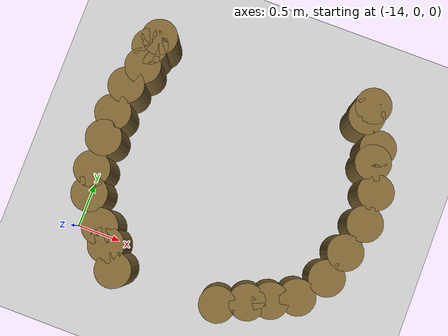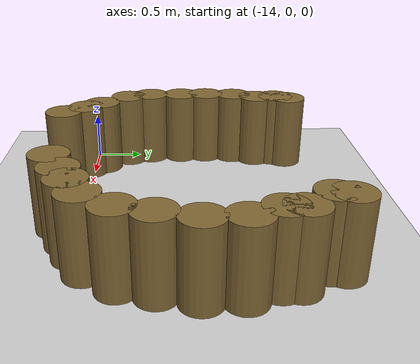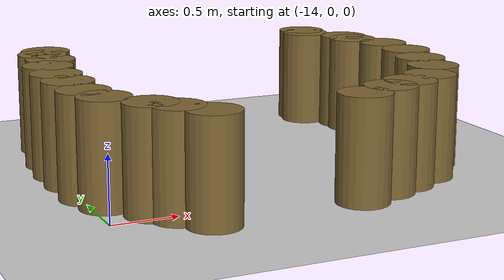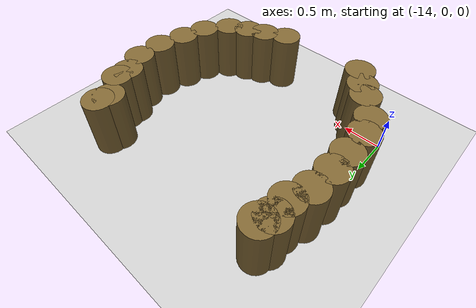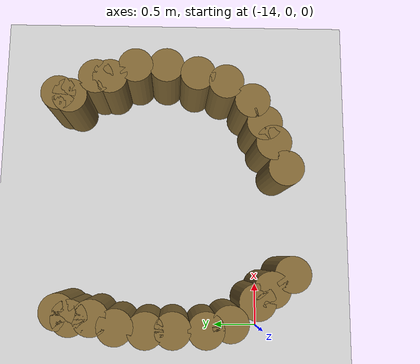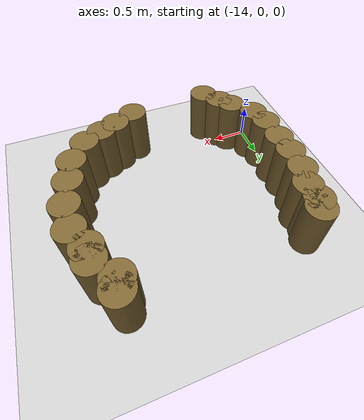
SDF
<sdf version="1.7">
 <world name="default">
  <model name="ground_plane">
   <static>1</static>
   <link name="link">
    <collision name="collision">
     <geometry><plane><normal>0 0 1</normal><size>100 100</size></plane></geometry>
     <surface><friction><ode><mu>100</mu><mu2>50</mu2></ode></friction></surface>
    </collision>
    <visual name="visual">
     <cast_shadows>0</cast_shadows>
     <geometry><plane><normal>0 0 1</normal><size>100 100</size></plane></geometry>
     <material>
      <script><uri>file://media/materials/scripts/gazebo.material</uri><name>Gazebo/Grey</name></script>
     </material>
    </visual>
   </link>
  </model>
  <model name="mini_cylinder_0_clone_0_clone_clone_clone_clone_3_clone_20_clone_7">
   <link name="link">
    <inertial>
     <mass>1</mass>
     <inertia><ixx>0.145833</ixx><ixy>0</ixy><ixz>0</ixz><iyy>0.145833</iyy><iyz>0</iyz><izz>0.125</izz></inertia>
    </inertial>
    <visual name="visual">
     <geometry><cylinder><radius>0.2</radius><length>0.8</length></cylinder></geometry>
     <material>
      <script><name>Gazebo/Grey</name><uri>file://media/materials/scripts/gazebo.material</uri></script>
      <shader type="vertex"><normal_map>__default__</normal_map></shader>
      <ambient>0.5 0.4 0.2 1</ambient>
      <diffuse>0.7 0.7 0.7 1</diffuse>
      <specular>0.01 0.01 0.01 1</specular>
      <emissive>0 0 0 1</emissive>
     </material>
    </visual>
    <collision name="collision">
     <geometry><cylinder><radius>0.2</radius><length>0.8</length></cylinder></geometry>
     <surface>
      <friction>
       <ode><mu>1</mu><mu2>1</mu2><fdir1>0 0 0</fdir1><slip1>0</slip1><slip2>0</slip2></ode>
       <torsional>
        <coefficient>1</coefficient>
        <patch_radius>0</patch_radius>
        <surface_radius>0</surface_radius>
        <use_patch_radius>1</use_patch_radius>
        <ode><slip>0</slip></ode>
       </torsional>
      </friction>
      <bounce><restitution_coefficient>0</restitution_coefficient><threshold>1e+06</threshold></bounce>
      <contact>
       <collide_without_contact>0</collide_without_contact>
       <collide_without_contact_bitmask>1</collide_without_contact_bitmask>
       <collide_bitmask>1</collide_bitmask>
       <ode>
        <soft_cfm>0</soft_cfm>
        <soft_erp>0.2</soft_erp>
        <kp>1e+13</kp>
        <kd>1</kd>
        <max_vel>0.01</max_vel>
        <min_depth>0</min_depth>
       </ode>
       <bullet>
        <split_impulse>1</split_impulse>
        <split_impulse_penetration_threshold>-0.01</split_impulse_penetration_threshold>
        <soft_cfm>0</soft_cfm>
        <soft_erp>0.2</soft_erp>
        <kp>1e+13</kp>
        <kd>1</kd>
       </bullet>
      </contact>
     </surface>
    </collision>
   </link>
   <static>1</static>
   <pose>-11.899 -0.092159 0.4 0 -0 0</pose>
  </model>
  <model name="mini_cylinder_0_clone_0_clone_clone_clone_clone_3_clone_20_clone_8">
   <link name="link">
    <inertial>
     <mass>1</mass>
     <inertia><ixx>0.145833</ixx><ixy>0</ixy><ixz>0</ixz><iyy>0.145833</iyy><iyz>0</iyz><izz>0.125</izz></inertia>
    </inertial>
    <visual name="visual">
     <geometry><cylinder><radius>0.2</radius><length>0.8</length></cylinder></geometry>
     <material>
      <script><name>Gazebo/Grey</name><uri>file://media/materials/scripts/gazebo.material</uri></script>
      <shader type="vertex"><normal_map>__default__</normal_map></shader>
      <ambient>0.5 0.4 0.2 1</ambient>
      <diffuse>0.7 0.7 0.7 1</diffuse>
      <specular>0.01 0.01 0.01 1</specular>
      <emissive>0 0 0 1</emissive>
     </material>
    </visual>
    <collision name="collision">
     <geometry><cylinder><radius>0.2</radius><length>0.8</length></cylinder></geometry>
     <surface>
      <friction>
       <ode><mu>1</mu><mu2>1</mu2><fdir1>0 0 0</fdir1><slip1>0</slip1><slip2>0</slip2></ode>
       <torsional>
        <coefficient>1</coefficient>
        <patch_radius>0</patch_radius>
        <surface_radius>0</surface_radius>
        <use_patch_radius>1</use_patch_radius>
        <ode><slip>0</slip></ode>
       </torsional>
      </friction>
      <bounce><restitution_coefficient>0</restitution_coefficient><threshold>1e+06</threshold></bounce>
      <contact>
       <collide_without_contact>0</collide_without_contact>
       <collide_without_contact_bitmask>1</collide_without_contact_bitmask>
       <collide_bitmask>1</collide_bitmask>
       <ode>
        <soft_cfm>0</soft_cfm>
        <soft_erp>0.2</soft_erp>
        <kp>1e+13</kp>
        <kd>1</kd>
        <max_vel>0.01</max_vel>
        <min_depth>0</min_depth>
       </ode>
       <bullet>
        <split_impulse>1</split_impulse>
        <split_impulse_penetration_threshold>-0.01</split_impulse_penetration_threshold>
        <soft_cfm>0</soft_cfm>
        <soft_erp>0.2</soft_erp>
        <kp>1e+13</kp>
        <kd>1</kd>
       </bullet>
      </contact>
     </surface>
    </collision>
   </link>
   <static>1</static>
   <pose>-11.6728 0.008912 0.4 0 -0 0</pose>
  </model>
  <model name="mini_cylinder_0_clone_0_clone_clone_clone_clone_3_clone_20_clone_9">
   <link name="link">
    <inertial>
     <mass>1</mass>
     <inertia><ixx>0.145833</ixx><ixy>0</ixy><ixz>0</ixz><iyy>0.145833</iyy><iyz>0</iyz><izz>0.125</izz></inertia>
    </inertial>
    <visual name="visual">
     <geometry><cylinder><radius>0.2</radius><length>0.8</length></cylinder></geometry>
     <material>
      <script><name>Gazebo/Grey</name><uri>file://media/materials/scripts/gazebo.material</uri></script>
      <shader type="vertex"><normal_map>__default__</normal_map></shader>
      <ambient>0.5 0.4 0.2 1</ambient>
      <diffuse>0.7 0.7 0.7 1</diffuse>
      <specular>0.01 0.01 0.01 1</specular>
      <emissive>0 0 0 1</emissive>
     </material>
    </visual>
    <collision name="collision">
     <geometry><cylinder><radius>0.2</radius><length>0.8</length></cylinder></geometry>
     <surface>
      <friction>
       <ode><mu>1</mu><mu2>1</mu2><fdir1>0 0 0</fdir1><slip1>0</slip1><slip2>0</slip2></ode>
       <torsional>
        <coefficient>1</coefficient>
        <patch_radius>0</patch_radius>
        <surface_radius>0</surface_radius>
        <use_patch_radius>1</use_patch_radius>
        <ode><slip>0</slip></ode>
       </torsional>
      </friction>
      <bounce><restitution_coefficient>0</restitution_coefficient><threshold>1e+06</threshold></bounce>
      <contact>
       <collide_without_contact>0</collide_without_contact>
       <collide_without_contact_bitmask>1</collide_without_contact_bitmask>
       <collide_bitmask>1</collide_bitmask>
       <ode>
        <soft_cfm>0</soft_cfm>
        <soft_erp>0.2</soft_erp>
        <kp>1e+13</kp>
        <kd>1</kd>
        <max_vel>0.01</max_vel>
        <min_depth>0</min_depth>
       </ode>
       <bullet>
        <split_impulse>1</split_impulse>
        <split_impulse_penetration_threshold>-0.01</split_impulse_penetration_threshold>
        <soft_cfm>0</soft_cfm>
        <soft_erp>0.2</soft_erp>
        <kp>1e+13</kp>
        <kd>1</kd>
       </bullet>
      </contact>
     </surface>
    </collision>
   </link>
   <static>1</static>
   <pose>-11.4147 0.142919 0.4 0 -0 0</pose>
  </model>
  <model name="mini_cylinder_0_clone_0_clone_clone_clone_clone_3_clone_20_clone_10">
   <link name="link">
    <inertial>
     <mass>1</mass>
     <inertia><ixx>0.145833</ixx><ixy>0</ixy><ixz>0</ixz><iyy>0.145833</iyy><iyz>0</iyz><izz>0.125</izz></inertia>
    </inertial>
    <visual name="visual">
     <geometry><cylinder><radius>0.2</radius><length>0.8</length></cylinder></geometry>
     <material>
      <script><name>Gazebo/Grey</name><uri>file://media/materials/scripts/gazebo.material</uri></script>
      <shader type="vertex"><normal_map>__default__</normal_map></shader>
      <ambient>0.5 0.4 0.2 1</ambient>
      <diffuse>0.7 0.7 0.7 1</diffuse>
      <specular>0.01 0.01 0.01 1</specular>
      <emissive>0 0 0 1</emissive>
     </material>
    </visual>
    <collision name="collision">
     <geometry><cylinder><radius>0.2</radius><length>0.8</length></cylinder></geometry>
     <surface>
      <friction>
       <ode><mu>1</mu><mu2>1</mu2><fdir1>0 0 0</fdir1><slip1>0</slip1><slip2>0</slip2></ode>
       <torsional>
        <coefficient>1</coefficient>
        <patch_radius>0</patch_radius>
        <surface_radius>0</surface_radius>
        <use_patch_radius>1</use_patch_radius>
        <ode><slip>0</slip></ode>
       </torsional>
      </friction>
      <bounce><restitution_coefficient>0</restitution_coefficient><threshold>1e+06</threshold></bounce>
      <contact>
       <collide_without_contact>0</collide_without_contact>
       <collide_without_contact_bitmask>1</collide_without_contact_bitmask>
       <collide_bitmask>1</collide_bitmask>
       <ode>
        <soft_cfm>0</soft_cfm>
        <soft_erp>0.2</soft_erp>
        <kp>1e+13</kp>
        <kd>1</kd>
        <max_vel>0.01</max_vel>
        <min_depth>0</min_depth>
       </ode>
       <bullet>
        <split_impulse>1</split_impulse>
        <split_impulse_penetration_threshold>-0.01</split_impulse_penetration_threshold>
        <soft_cfm>0</soft_cfm>
        <soft_erp>0.2</soft_erp>
        <kp>1e+13</kp>
        <kd>1</kd>
       </bullet>
      </contact>
     </surface>
    </collision>
   </link>
   <static>1</static>
   <pose>-11.1925 0.439163 0.4 0 -0 0</pose>
  </model>
  <model name="mini_cylinder_0_clone_0_clone_clone_clone_clone_3_clone_20_clone_11">
   <link name="link">
    <inertial>
     <mass>1</mass>
     <inertia><ixx>0.145833</ixx><ixy>0</ixy><ixz>0</ixz><iyy>0.145833</iyy><iyz>0</iyz><izz>0.125</izz></inertia>
    </inertial>
    <visual name="visual">
     <geometry><cylinder><radius>0.2</radius><length>0.8</length></cylinder></geometry>
     <material>
      <script><name>Gazebo/Grey</name><uri>file://media/materials/scripts/gazebo.material</uri></script>
      <shader type="vertex"><normal_map>__default__</normal_map></shader>
      <ambient>0.5 0.4 0.2 1</ambient>
      <diffuse>0.7 0.7 0.7 1</diffuse>
      <specular>0.01 0.01 0.01 1</specular>
      <emissive>0 0 0 1</emissive>
     </material>
    </visual>
    <collision name="collision">
     <geometry><cylinder><radius>0.2</radius><length>0.8</length></cylinder></geometry>
     <surface>
      <friction>
       <ode><mu>1</mu><mu2>1</mu2><fdir1>0 0 0</fdir1><slip1>0</slip1><slip2>0</slip2></ode>
       <torsional>
        <coefficient>1</coefficient>
        <patch_radius>0</patch_radius>
        <surface_radius>0</surface_radius>
        <use_patch_radius>1</use_patch_radius>
        <ode><slip>0</slip></ode>
       </torsional>
      </friction>
      <bounce><restitution_coefficient>0</restitution_coefficient><threshold>1e+06</threshold></bounce>
      <contact>
       <collide_without_contact>0</collide_without_contact>
       <collide_without_contact_bitmask>1</collide_without_contact_bitmask>
       <collide_bitmask>1</collide_bitmask>
       <ode>
        <soft_cfm>0</soft_cfm>
        <soft_erp>0.2</soft_erp>
        <kp>1e+13</kp>
        <kd>1</kd>
        <max_vel>0.01</max_vel>
        <min_depth>0</min_depth>
       </ode>
       <bullet>
        <split_impulse>1</split_impulse>
        <split_impulse_penetration_threshold>-0.01</split_impulse_penetration_threshold>
        <soft_cfm>0</soft_cfm>
        <soft_erp>0.2</soft_erp>
        <kp>1e+13</kp>
        <kd>1</kd>
       </bullet>
      </contact>
     </surface>
    </collision>
   </link>
   <static>1</static>
   <pose>-11.0994 0.765678 0.4 0 -0 0</pose>
  </model>
  <model name="mini_cylinder_0_clone_0_clone_clone_clone_clone_3_clone_20_clone_12">
   <link name="link">
    <inertial>
     <mass>1</mass>
     <inertia><ixx>0.145833</ixx><ixy>0</ixy><ixz>0</ixz><iyy>0.145833</iyy><iyz>0</iyz><izz>0.125</izz></inertia>
    </inertial>
    <visual name="visual">
     <geometry><cylinder><radius>0.2</radius><length>0.8</length></cylinder></geometry>
     <material>
      <script><name>Gazebo/Grey</name><uri>file://media/materials/scripts/gazebo.material</uri></script>
      <shader type="vertex"><normal_map>__default__</normal_map></shader>
      <ambient>0.5 0.4 0.2 1</ambient>
      <diffuse>0.7 0.7 0.7 1</diffuse>
      <specular>0.01 0.01 0.01 1</specular>
      <emissive>0 0 0 1</emissive>
     </material>
    </visual>
    <collision name="collision">
     <geometry><cylinder><radius>0.2</radius><length>0.8</length></cylinder></geometry>
     <surface>
      <friction>
       <ode><mu>1</mu><mu2>1</mu2><fdir1>0 0 0</fdir1><slip1>0</slip1><slip2>0</slip2></ode>
       <torsional>
        <coefficient>1</coefficient>
        <patch_radius>0</patch_radius>
        <surface_radius>0</surface_radius>
        <use_patch_radius>1</use_patch_radius>
        <ode><slip>0</slip></ode>
       </torsional>
      </friction>
      <bounce><restitution_coefficient>0</restitution_coefficient><threshold>1e+06</threshold></bounce>
      <contact>
       <collide_without_contact>0</collide_without_contact>
       <collide_without_contact_bitmask>1</collide_without_contact_bitmask>
       <collide_bitmask>1</collide_bitmask>
       <ode>
        <soft_cfm>0</soft_cfm>
        <soft_erp>0.2</soft_erp>
        <kp>1e+13</kp>
        <kd>1</kd>
        <max_vel>0.01</max_vel>
        <min_depth>0</min_depth>
       </ode>
       <bullet>
        <split_impulse>1</split_impulse>
        <split_impulse_penetration_threshold>-0.01</split_impulse_penetration_threshold>
        <soft_cfm>0</soft_cfm>
        <soft_erp>0.2</soft_erp>
        <kp>1e+13</kp>
        <kd>1</kd>
       </bullet>
      </contact>
     </surface>
    </collision>
   </link>
   <static>1</static>
   <pose>-11.0079 1.12482 0.4 0 -0 0</pose>
  </model>
  <model name="mini_cylinder_0_clone_0_clone_clone_clone_clone_3_clone_20_clone_13">
   <link name="link">
    <inertial>
     <mass>1</mass>
     <inertia><ixx>0.145833</ixx><ixy>0</ixy><ixz>0</ixz><iyy>0.145833</iyy><iyz>0</iyz><izz>0.125</izz></inertia>
    </inertial>
    <visual name="visual">
     <geometry><cylinder><radius>0.2</radius><length>0.8</length></cylinder></geometry>
     <material>
      <script><name>Gazebo/Grey</name><uri>file://media/materials/scripts/gazebo.material</uri></script>
      <shader type="vertex"><normal_map>__default__</normal_map></shader>
      <ambient>0.5 0.4 0.2 1</ambient>
      <diffuse>0.7 0.7 0.7 1</diffuse>
      <specular>0.01 0.01 0.01 1</specular>
      <emissive>0 0 0 1</emissive>
     </material>
    </visual>
    <collision name="collision">
     <geometry><cylinder><radius>0.2</radius><length>0.8</length></cylinder></geometry>
     <surface>
      <friction>
       <ode><mu>1</mu><mu2>1</mu2><fdir1>0 0 0</fdir1><slip1>0</slip1><slip2>0</slip2></ode>
       <torsional>
        <coefficient>1</coefficient>
        <patch_radius>0</patch_radius>
        <surface_radius>0</surface_radius>
        <use_patch_radius>1</use_patch_radius>
        <ode><slip>0</slip></ode>
       </torsional>
      </friction>
      <bounce><restitution_coefficient>0</restitution_coefficient><threshold>1e+06</threshold></bounce>
      <contact>
       <collide_without_contact>0</collide_without_contact>
       <collide_without_contact_bitmask>1</collide_without_contact_bitmask>
       <collide_bitmask>1</collide_bitmask>
       <ode>
        <soft_cfm>0</soft_cfm>
        <soft_erp>0.2</soft_erp>
        <kp>1e+13</kp>
        <kd>1</kd>
        <max_vel>0.01</max_vel>
        <min_depth>0</min_depth>
       </ode>
       <bullet>
        <split_impulse>1</split_impulse>
        <split_impulse_penetration_threshold>-0.01</split_impulse_penetration_threshold>
        <soft_cfm>0</soft_cfm>
        <soft_erp>0.2</soft_erp>
        <kp>1e+13</kp>
        <kd>1</kd>
       </bullet>
      </contact>
     </surface>
    </collision>
   </link>
   <static>1</static>
   <pose>-11.0137 1.48252 0.4 0 -0 0</pose>
  </model>
  <model name="mini_cylinder_0_clone_0_clone_clone_clone_clone_3_clone_20_clone_14">
   <link name="link">
    <inertial>
     <mass>1</mass>
     <inertia><ixx>0.145833</ixx><ixy>0</ixy><ixz>0</ixz><iyy>0.145833</iyy><iyz>0</iyz><izz>0.125</izz></inertia>
    </inertial>
    <visual name="visual">
     <geometry><cylinder><radius>0.2</radius><length>0.8</length></cylinder></geometry>
     <material>
      <script><name>Gazebo/Grey</name><uri>file://media/materials/scripts/gazebo.material</uri></script>
      <shader type="vertex"><normal_map>__default__</normal_map></shader>
      <ambient>0.5 0.4 0.2 1</ambient>
      <diffuse>0.7 0.7 0.7 1</diffuse>
      <specular>0.01 0.01 0.01 1</specular>
      <emissive>0 0 0 1</emissive>
     </material>
    </visual>
    <collision name="collision">
     <geometry><cylinder><radius>0.2</radius><length>0.8</length></cylinder></geometry>
     <surface>
      <friction>
       <ode><mu>1</mu><mu2>1</mu2><fdir1>0 0 0</fdir1><slip1>0</slip1><slip2>0</slip2></ode>
       <torsional>
        <coefficient>1</coefficient>
        <patch_radius>0</patch_radius>
        <surface_radius>0</surface_radius>
        <use_patch_radius>1</use_patch_radius>
        <ode><slip>0</slip></ode>
       </torsional>
      </friction>
      <bounce><restitution_coefficient>0</restitution_coefficient><threshold>1e+06</threshold></bounce>
      <contact>
       <collide_without_contact>0</collide_without_contact>
       <collide_without_contact_bitmask>1</collide_without_contact_bitmask>
       <collide_bitmask>1</collide_bitmask>
       <ode>
        <soft_cfm>0</soft_cfm>
        <soft_erp>0.2</soft_erp>
        <kp>1e+13</kp>
        <kd>1</kd>
        <max_vel>0.01</max_vel>
        <min_depth>0</min_depth>
       </ode>
       <bullet>
        <split_impulse>1</split_impulse>
        <split_impulse_penetration_threshold>-0.01</split_impulse_penetration_threshold>
        <soft_cfm>0</soft_cfm>
        <soft_erp>0.2</soft_erp>
        <kp>1e+13</kp>
        <kd>1</kd>
       </bullet>
      </contact>
     </surface>
    </collision>
   </link>
   <static>1</static>
   <pose>-11.1516 1.93585 0.4 0 -0 0</pose>
  </model>
  <model name="mini_cylinder_0_clone_0_clone_clone_clone_clone_3_clone_20_clone_15">
   <link name="link">
    <inertial>
     <mass>1</mass>
     <inertia><ixx>0.145833</ixx><ixy>0</ixy><ixz>0</ixz><iyy>0.145833</iyy><iyz>0</iyz><izz>0.125</izz></inertia>
    </inertial>
    <visual name="visual">
     <geometry><cylinder><radius>0.2</radius><length>0.8</length></cylinder></geometry>
     <material>
      <script><name>Gazebo/Grey</name><uri>file://media/materials/scripts/gazebo.material</uri></script>
      <shader type="vertex"><normal_map>__default__</normal_map></shader>
      <ambient>0.5 0.4 0.2 1</ambient>
      <diffuse>0.7 0.7 0.7 1</diffuse>
      <specular>0.01 0.01 0.01 1</specular>
      <emissive>0 0 0 1</emissive>
     </material>
    </visual>
    <collision name="collision">
     <geometry><cylinder><radius>0.2</radius><length>0.8</length></cylinder></geometry>
     <surface>
      <friction>
       <ode><mu>1</mu><mu2>1</mu2><fdir1>0 0 0</fdir1><slip1>0</slip1><slip2>0</slip2></ode>
       <torsional>
        <coefficient>1</coefficient>
        <patch_radius>0</patch_radius>
        <surface_radius>0</surface_radius>
        <use_patch_radius>1</use_patch_radius>
        <ode><slip>0</slip></ode>
       </torsional>
      </friction>
      <bounce><restitution_coefficient>0</restitution_coefficient><threshold>1e+06</threshold></bounce>
      <contact>
       <collide_without_contact>0</collide_without_contact>
       <collide_without_contact_bitmask>1</collide_without_contact_bitmask>
       <collide_bitmask>1</collide_bitmask>
       <ode>
        <soft_cfm>0</soft_cfm>
        <soft_erp>0.2</soft_erp>
        <kp>1e+13</kp>
        <kd>1</kd>
        <max_vel>0.01</max_vel>
        <min_depth>0</min_depth>
       </ode>
       <bullet>
        <split_impulse>1</split_impulse>
        <split_impulse_penetration_threshold>-0.01</split_impulse_penetration_threshold>
        <soft_cfm>0</soft_cfm>
        <soft_erp>0.2</soft_erp>
        <kp>1e+13</kp>
        <kd>1</kd>
       </bullet>
      </contact>
     </surface>
    </collision>
   </link>
   <static>1</static>
   <pose>-11.353 2.35543 0.4 0 -0 0</pose>
  </model>
  <model name="mini_cylinder_0_clone_0_clone_clone_clone_clone_3_clone_20_clone_16">
   <link name="link">
    <inertial>
     <mass>1</mass>
     <inertia><ixx>0.145833</ixx><ixy>0</ixy><ixz>0</ixz><iyy>0.145833</iyy><iyz>0</iyz><izz>0.125</izz></inertia>
    </inertial>
    <visual name="visual">
     <geometry><cylinder><radius>0.2</radius><length>0.8</length></cylinder></geometry>
     <material>
      <script><name>Gazebo/Grey</name><uri>file://media/materials/scripts/gazebo.material</uri></script>
      <shader type="vertex"><normal_map>__default__</normal_map></shader>
      <ambient>0.5 0.4 0.2 1</ambient>
      <diffuse>0.7 0.7 0.7 1</diffuse>
      <specular>0.01 0.01 0.01 1</specular>
      <emissive>0 0 0 1</emissive>
     </material>
    </visual>
    <collision name="collision">
     <geometry><cylinder><radius>0.2</radius><length>0.8</length></cylinder></geometry>
     <surface>
      <friction>
       <ode><mu>1</mu><mu2>1</mu2><fdir1>0 0 0</fdir1><slip1>0</slip1><slip2>0</slip2></ode>
       <torsional>
        <coefficient>1</coefficient>
        <patch_radius>0</patch_radius>
        <surface_radius>0</surface_radius>
        <use_patch_radius>1</use_patch_radius>
        <ode><slip>0</slip></ode>
       </torsional>
      </friction>
      <bounce><restitution_coefficient>0</restitution_coefficient><threshold>1e+06</threshold></bounce>
      <contact>
       <collide_without_contact>0</collide_without_contact>
       <collide_without_contact_bitmask>1</collide_without_contact_bitmask>
       <collide_bitmask>1</collide_bitmask>
       <ode>
        <soft_cfm>0</soft_cfm>
        <soft_erp>0.2</soft_erp>
        <kp>1e+13</kp>
        <kd>1</kd>
        <max_vel>0.01</max_vel>
        <min_depth>0</min_depth>
       </ode>
       <bullet>
        <split_impulse>1</split_impulse>
        <split_impulse_penetration_threshold>-0.01</split_impulse_penetration_threshold>
        <soft_cfm>0</soft_cfm>
        <soft_erp>0.2</soft_erp>
        <kp>1e+13</kp>
        <kd>1</kd>
       </bullet>
      </contact>
     </surface>
    </collision>
   </link>
   <static>1</static>
   <pose>-11.1486 1.77327 0.4 0 -0 0</pose>
  </model>
  <model name="mini_cylinder_0_clone_0_clone_clone_clone_clone_3_clone_20_clone_17">
   <link name="link">
    <inertial>
     <mass>1</mass>
     <inertia><ixx>0.145833</ixx><ixy>0</ixy><ixz>0</ixz><iyy>0.145833</iyy><iyz>0</iyz><izz>0.125</izz></inertia>
    </inertial>
    <visual name="visual">
     <geometry><cylinder><radius>0.2</radius><length>0.8</length></cylinder></geometry>
     <material>
      <script><name>Gazebo/Grey</name><uri>file://media/materials/scripts/gazebo.material</uri></script>
      <shader type="vertex"><normal_map>__default__</normal_map></shader>
      <ambient>0.5 0.4 0.2 1</ambient>
      <diffuse>0.7 0.7 0.7 1</diffuse>
      <specular>0.01 0.01 0.01 1</specular>
      <emissive>0 0 0 1</emissive>
     </material>
    </visual>
    <collision name="collision">
     <geometry><cylinder><radius>0.2</radius><length>0.8</length></cylinder></geometry>
     <surface>
      <friction>
       <ode><mu>1</mu><mu2>1</mu2><fdir1>0 0 0</fdir1><slip1>0</slip1><slip2>0</slip2></ode>
       <torsional>
        <coefficient>1</coefficient>
        <patch_radius>0</patch_radius>
        <surface_radius>0</surface_radius>
        <use_patch_radius>1</use_patch_radius>
        <ode><slip>0</slip></ode>
       </torsional>
      </friction>
      <bounce><restitution_coefficient>0</restitution_coefficient><threshold>1e+06</threshold></bounce>
      <contact>
       <collide_without_contact>0</collide_without_contact>
       <collide_without_contact_bitmask>1</collide_without_contact_bitmask>
       <collide_bitmask>1</collide_bitmask>
       <ode>
        <soft_cfm>0</soft_cfm>
        <soft_erp>0.2</soft_erp>
        <kp>1e+13</kp>
        <kd>1</kd>
        <max_vel>0.01</max_vel>
        <min_depth>0</min_depth>
       </ode>
       <bullet>
        <split_impulse>1</split_impulse>
        <split_impulse_penetration_threshold>-0.01</split_impulse_penetration_threshold>
        <soft_cfm>0</soft_cfm>
        <soft_erp>0.2</soft_erp>
        <kp>1e+13</kp>
        <kd>1</kd>
       </bullet>
      </contact>
     </surface>
    </collision>
   </link>
   <static>1</static>
   <pose>-11.3832 2.22483 0.4 0 -0 0</pose>
  </model>
  <model name="mini_cylinder_0_clone_0_clone_clone_clone_clone_3_clone_20_clone_26">
   <link name="link">
    <inertial>
     <mass>1</mass>
     <inertia><ixx>0.145833</ixx><ixy>0</ixy><ixz>0</ixz><iyy>0.145833</iyy><iyz>0</iyz><izz>0.125</izz></inertia>
    </inertial>
    <visual name="visual">
     <geometry><cylinder><radius>0.2</radius><length>0.8</length></cylinder></geometry>
     <material>
      <script><name>Gazebo/Grey</name><uri>file://media/materials/scripts/gazebo.material</uri></script>
      <shader type="vertex"><normal_map>__default__</normal_map></shader>
      <ambient>0.5 0.4 0.2 1</ambient>
      <diffuse>0.7 0.7 0.7 1</diffuse>
      <specular>0.01 0.01 0.01 1</specular>
      <emissive>0 0 0 1</emissive>
     </material>
    </visual>
    <collision name="collision">
     <geometry><cylinder><radius>0.2</radius><length>0.8</length></cylinder></geometry>
     <surface>
      <friction>
       <ode><mu>1</mu><mu2>1</mu2><fdir1>0 0 0</fdir1><slip1>0</slip1><slip2>0</slip2></ode>
       <torsional>
        <coefficient>1</coefficient>
        <patch_radius>0</patch_radius>
        <surface_radius>0</surface_radius>
        <use_patch_radius>1</use_patch_radius>
        <ode><slip>0</slip></ode>
       </torsional>
      </friction>
      <bounce><restitution_coefficient>0</restitution_coefficient><threshold>1e+06</threshold></bounce>
      <contact>
       <collide_without_contact>0</collide_without_contact>
       <collide_without_contact_bitmask>1</collide_without_contact_bitmask>
       <collide_bitmask>1</collide_bitmask>
       <ode>
        <soft_cfm>0</soft_cfm>
        <soft_erp>0.2</soft_erp>
        <kp>1e+13</kp>
        <kd>1</kd>
        <max_vel>0.01</max_vel>
        <min_depth>0</min_depth>
       </ode>
       <bullet>
        <split_impulse>1</split_impulse>
        <split_impulse_penetration_threshold>-0.01</split_impulse_penetration_threshold>
        <soft_cfm>0</soft_cfm>
        <soft_erp>0.2</soft_erp>
        <kp>1e+13</kp>
        <kd>1</kd>
       </bullet>
      </contact>
     </surface>
    </collision>
   </link>
   <static>1</static>
   <pose>-13.7894 2.25201 0.4 0 -0 0</pose>
  </model>
  <model name="mini_cylinder_0_clone_0_clone_clone_clone_clone_3_clone_20_clone_27">
   <link name="link">
    <inertial>
     <mass>1</mass>
     <inertia><ixx>0.145833</ixx><ixy>0</ixy><ixz>0</ixz><iyy>0.145833</iyy><iyz>0</iyz><izz>0.125</izz></inertia>
    </inertial>
    <visual name="visual">
     <geometry><cylinder><radius>0.2</radius><length>0.8</length></cylinder></geometry>
     <material>
      <script><name>Gazebo/Grey</name><uri>file://media/materials/scripts/gazebo.material</uri></script>
      <shader type="vertex"><normal_map>__default__</normal_map></shader>
      <ambient>0.5 0.4 0.2 1</ambient>
      <diffuse>0.7 0.7 0.7 1</diffuse>
      <specular>0.01 0.01 0.01 1</specular>
      <emissive>0 0 0 1</emissive>
     </material>
    </visual>
    <collision name="collision">
     <geometry><cylinder><radius>0.2</radius><length>0.8</length></cylinder></geometry>
     <surface>
      <friction>
       <ode><mu>1</mu><mu2>1</mu2><fdir1>0 0 0</fdir1><slip1>0</slip1><slip2>0</slip2></ode>
       <torsional>
        <coefficient>1</coefficient>
        <patch_radius>0</patch_radius>
        <surface_radius>0</surface_radius>
        <use_patch_radius>1</use_patch_radius>
        <ode><slip>0</slip></ode>
       </torsional>
      </friction>
      <bounce><restitution_coefficient>0</restitution_coefficient><threshold>1e+06</threshold></bounce>
      <contact>
       <collide_without_contact>0</collide_without_contact>
       <collide_without_contact_bitmask>1</collide_without_contact_bitmask>
       <collide_bitmask>1</collide_bitmask>
       <ode>
        <soft_cfm>0</soft_cfm>
        <soft_erp>0.2</soft_erp>
        <kp>1e+13</kp>
        <kd>1</kd>
        <max_vel>0.01</max_vel>
        <min_depth>0</min_depth>
       </ode>
       <bullet>
        <split_impulse>1</split_impulse>
        <split_impulse_penetration_threshold>-0.01</split_impulse_penetration_threshold>
        <soft_cfm>0</soft_cfm>
        <soft_erp>0.2</soft_erp>
        <kp>1e+13</kp>
        <kd>1</kd>
       </bullet>
      </contact>
     </surface>
    </collision>
   </link>
   <static>1</static>
   <pose>-13.8483 1.89327 0.4 0 -0 0</pose>
  </model>
  <model name="mini_cylinder_0_clone_0_clone_clone_clone_clone_3_clone_20_clone_28">
   <link name="link">
    <inertial>
     <mass>1</mass>
     <inertia><ixx>0.145833</ixx><ixy>0</ixy><ixz>0</ixz><iyy>0.145833</iyy><iyz>0</iyz><izz>0.125</izz></inertia>
    </inertial>
    <visual name="visual">
     <geometry><cylinder><radius>0.2</radius><length>0.8</length></cylinder></geometry>
     <material>
      <script><name>Gazebo/Grey</name><uri>file://media/materials/scripts/gazebo.material</uri></script>
      <shader type="vertex"><normal_map>__default__</normal_map></shader>
      <ambient>0.5 0.4 0.2 1</ambient>
      <diffuse>0.7 0.7 0.7 1</diffuse>
      <specular>0.01 0.01 0.01 1</specular>
      <emissive>0 0 0 1</emissive>
     </material>
    </visual>
    <collision name="collision">
     <geometry><cylinder><radius>0.2</radius><length>0.8</length></cylinder></geometry>
     <surface>
      <friction>
       <ode><mu>1</mu><mu2>1</mu2><fdir1>0 0 0</fdir1><slip1>0</slip1><slip2>0</slip2></ode>
       <torsional>
        <coefficient>1</coefficient>
        <patch_radius>0</patch_radius>
        <surface_radius>0</surface_radius>
        <use_patch_radius>1</use_patch_radius>
        <ode><slip>0</slip></ode>
       </torsional>
      </friction>
      <bounce><restitution_coefficient>0</restitution_coefficient><threshold>1e+06</threshold></bounce>
      <contact>
       <collide_without_contact>0</collide_without_contact>
       <collide_without_contact_bitmask>1</collide_without_contact_bitmask>
       <collide_bitmask>1</collide_bitmask>
       <ode>
        <soft_cfm>0</soft_cfm>
        <soft_erp>0.2</soft_erp>
        <kp>1e+13</kp>
        <kd>1</kd>
        <max_vel>0.01</max_vel>
        <min_depth>0</min_depth>
       </ode>
       <bullet>
        <split_impulse>1</split_impulse>
        <split_impulse_penetration_threshold>-0.01</split_impulse_penetration_threshold>
        <soft_cfm>0</soft_cfm>
        <soft_erp>0.2</soft_erp>
        <kp>1e+13</kp>
        <kd>1</kd>
       </bullet>
      </contact>
     </surface>
    </collision>
   </link>
   <static>1</static>
   <pose>-13.9409 1.63155 0.4 0 -0 0</pose>
  </model>
  <model name="mini_cylinder_0_clone_0_clone_clone_clone_clone_3_clone_20_clone_29">
   <link name="link">
    <inertial>
     <mass>1</mass>
     <inertia><ixx>0.145833</ixx><ixy>0</ixy><ixz>0</ixz><iyy>0.145833</iyy><iyz>0</iyz><izz>0.125</izz></inertia>
    </inertial>
    <visual name="visual">
     <geometry><cylinder><radius>0.2</radius><length>0.8</length></cylinder></geometry>
     <material>
      <script><name>Gazebo/Grey</name><uri>file://media/materials/scripts/gazebo.material</uri></script>
      <shader type="vertex"><normal_map>__default__</normal_map></shader>
      <ambient>0.5 0.4 0.2 1</ambient>
      <diffuse>0.7 0.7 0.7 1</diffuse>
      <specular>0.01 0.01 0.01 1</specular>
      <emissive>0 0 0 1</emissive>
     </material>
    </visual>
    <collision name="collision">
     <geometry><cylinder><radius>0.2</radius><length>0.8</length></cylinder></geometry>
     <surface>
      <friction>
       <ode><mu>1</mu><mu2>1</mu2><fdir1>0 0 0</fdir1><slip1>0</slip1><slip2>0</slip2></ode>
       <torsional>
        <coefficient>1</coefficient>
        <patch_radius>0</patch_radius>
        <surface_radius>0</surface_radius>
        <use_patch_radius>1</use_patch_radius>
        <ode><slip>0</slip></ode>
       </torsional>
      </friction>
      <bounce><restitution_coefficient>0</restitution_coefficient><threshold>1e+06</threshold></bounce>
      <contact>
       <collide_without_contact>0</collide_without_contact>
       <collide_without_contact_bitmask>1</collide_without_contact_bitmask>
       <collide_bitmask>1</collide_bitmask>
       <ode>
        <soft_cfm>0</soft_cfm>
        <soft_erp>0.2</soft_erp>
        <kp>1e+13</kp>
        <kd>1</kd>
        <max_vel>0.01</max_vel>
        <min_depth>0</min_depth>
       </ode>
       <bullet>
        <split_impulse>1</split_impulse>
        <split_impulse_penetration_threshold>-0.01</split_impulse_penetration_threshold>
        <soft_cfm>0</soft_cfm>
        <soft_erp>0.2</soft_erp>
        <kp>1e+13</kp>
        <kd>1</kd>
       </bullet>
      </contact>
     </surface>
    </collision>
   </link>
   <static>1</static>
   <pose>-13.9687 1.3061 0.4 0 -0 0</pose>
  </model>
  <model name="mini_cylinder_0_clone_0_clone_clone_clone_clone_3_clone_20_clone_30">
   <link name="link">
    <inertial>
     <mass>1</mass>
     <inertia><ixx>0.145833</ixx><ixy>0</ixy><ixz>0</ixz><iyy>0.145833</iyy><iyz>0</iyz><izz>0.125</izz></inertia>
    </inertial>
    <visual name="visual">
     <geometry><cylinder><radius>0.2</radius><length>0.8</length></cylinder></geometry>
     <material>
      <script><name>Gazebo/Grey</name><uri>file://media/materials/scripts/gazebo.material</uri></script>
      <shader type="vertex"><normal_map>__default__</normal_map></shader>
      <ambient>0.5 0.4 0.2 1</ambient>
      <diffuse>0.7 0.7 0.7 1</diffuse>
      <specular>0.01 0.01 0.01 1</specular>
      <emissive>0 0 0 1</emissive>
     </material>
    </visual>
    <collision name="collision">
     <geometry><cylinder><radius>0.2</radius><length>0.8</length></cylinder></geometry>
     <surface>
      <friction>
       <ode><mu>1</mu><mu2>1</mu2><fdir1>0 0 0</fdir1><slip1>0</slip1><slip2>0</slip2></ode>
       <torsional>
        <coefficient>1</coefficient>
        <patch_radius>0</patch_radius>
        <surface_radius>0</surface_radius>
        <use_patch_radius>1</use_patch_radius>
        <ode><slip>0</slip></ode>
       </torsional>
      </friction>
      <bounce><restitution_coefficient>0</restitution_coefficient><threshold>1e+06</threshold></bounce>
      <contact>
       <collide_without_contact>0</collide_without_contact>
       <collide_without_contact_bitmask>1</collide_without_contact_bitmask>
       <collide_bitmask>1</collide_bitmask>
       <ode>
        <soft_cfm>0</soft_cfm>
        <soft_erp>0.2</soft_erp>
        <kp>1e+13</kp>
        <kd>1</kd>
        <max_vel>0.01</max_vel>
        <min_depth>0</min_depth>
       </ode>
       <bullet>
        <split_impulse>1</split_impulse>
        <split_impulse_penetration_threshold>-0.01</split_impulse_penetration_threshold>
        <soft_cfm>0</soft_cfm>
        <soft_erp>0.2</soft_erp>
        <kp>1e+13</kp>
        <kd>1</kd>
       </bullet>
      </contact>
     </surface>
    </collision>
   </link>
   <static>1</static>
   <pose>-13.964 1.01349 0.4 0 -0 0</pose>
  </model>
  <model name="mini_cylinder_0_clone_0_clone_clone_clone_clone_3_clone_20_clone_31">
   <link name="link">
    <inertial>
     <mass>1</mass>
     <inertia><ixx>0.145833</ixx><ixy>0</ixy><ixz>0</ixz><iyy>0.145833</iyy><iyz>0</iyz><izz>0.125</izz></inertia>
    </inertial>
    <visual name="visual">
     <geometry><cylinder><radius>0.2</radius><length>0.8</length></cylinder></geometry>
     <material>
      <script><name>Gazebo/Grey</name><uri>file://media/materials/scripts/gazebo.material</uri></script>
      <shader type="vertex"><normal_map>__default__</normal_map></shader>
      <ambient>0.5 0.4 0.2 1</ambient>
      <diffuse>0.7 0.7 0.7 1</diffuse>
      <specular>0.01 0.01 0.01 1</specular>
      <emissive>0 0 0 1</emissive>
     </material>
    </visual>
    <collision name="collision">
     <geometry><cylinder><radius>0.2</radius><length>0.8</length></cylinder></geometry>
     <surface>
      <friction>
       <ode><mu>1</mu><mu2>1</mu2><fdir1>0 0 0</fdir1><slip1>0</slip1><slip2>0</slip2></ode>
       <torsional>
        <coefficient>1</coefficient>
        <patch_radius>0</patch_radius>
        <surface_radius>0</surface_radius>
        <use_patch_radius>1</use_patch_radius>
        <ode><slip>0</slip></ode>
       </torsional>
      </friction>
      <bounce><restitution_coefficient>0</restitution_coefficient><threshold>1e+06</threshold></bounce>
      <contact>
       <collide_without_contact>0</collide_without_contact>
       <collide_without_contact_bitmask>1</collide_without_contact_bitmask>
       <collide_bitmask>1</collide_bitmask>
       <ode>
        <soft_cfm>0</soft_cfm>
        <soft_erp>0.2</soft_erp>
        <kp>1e+13</kp>
        <kd>1</kd>
        <max_vel>0.01</max_vel>
        <min_depth>0</min_depth>
       </ode>
       <bullet>
        <split_impulse>1</split_impulse>
        <split_impulse_penetration_threshold>-0.01</split_impulse_penetration_threshold>
        <soft_cfm>0</soft_cfm>
        <soft_erp>0.2</soft_erp>
        <kp>1e+13</kp>
        <kd>1</kd>
       </bullet>
      </contact>
     </surface>
    </collision>
   </link>
   <static>1</static>
   <pose>-13.9581 0.655887 0.4 0 -0 0</pose>
  </model>
  <model name="mini_cylinder_0_clone_0_clone_clone_clone_clone_3_clone_20_clone_32">
   <link name="link">
    <inertial>
     <mass>1</mass>
     <inertia><ixx>0.145833</ixx><ixy>0</ixy><ixz>0</ixz><iyy>0.145833</iyy><iyz>0</iyz><izz>0.125</izz></inertia>
    </inertial>
    <visual name="visual">
     <geometry><cylinder><radius>0.2</radius><length>0.8</length></cylinder></geometry>
     <material>
      <script><name>Gazebo/Grey</name><uri>file://media/materials/scripts/gazebo.material</uri></script>
      <shader type="vertex"><normal_map>__default__</normal_map></shader>
      <ambient>0.5 0.4 0.2 1</ambient>
      <diffuse>0.7 0.7 0.7 1</diffuse>
      <specular>0.01 0.01 0.01 1</specular>
      <emissive>0 0 0 1</emissive>
     </material>
    </visual>
    <collision name="collision">
     <geometry><cylinder><radius>0.2</radius><length>0.8</length></cylinder></geometry>
     <surface>
      <friction>
       <ode><mu>1</mu><mu2>1</mu2><fdir1>0 0 0</fdir1><slip1>0</slip1><slip2>0</slip2></ode>
       <torsional>
        <coefficient>1</coefficient>
        <patch_radius>0</patch_radius>
        <surface_radius>0</surface_radius>
        <use_patch_radius>1</use_patch_radius>
        <ode><slip>0</slip></ode>
       </torsional>
      </friction>
      <bounce><restitution_coefficient>0</restitution_coefficient><threshold>1e+06</threshold></bounce>
      <contact>
       <collide_without_contact>0</collide_without_contact>
       <collide_without_contact_bitmask>1</collide_without_contact_bitmask>
       <collide_bitmask>1</collide_bitmask>
       <ode>
        <soft_cfm>0</soft_cfm>
        <soft_erp>0.2</soft_erp>
        <kp>1e+13</kp>
        <kd>1</kd>
        <max_vel>0.01</max_vel>
        <min_depth>0</min_depth>
       </ode>
       <bullet>
        <split_impulse>1</split_impulse>
        <split_impulse_penetration_threshold>-0.01</split_impulse_penetration_threshold>
        <soft_cfm>0</soft_cfm>
        <soft_erp>0.2</soft_erp>
        <kp>1e+13</kp>
        <kd>1</kd>
       </bullet>
      </contact>
     </surface>
    </collision>
   </link>
   <static>1</static>
   <pose>-13.8886 0.396803 0.4 0 -0 0</pose>
  </model>
  <model name="mini_cylinder_0_clone_0_clone_clone_clone_clone_3_clone_20_clone_33">
   <link name="link">
    <inertial>
     <mass>1</mass>
     <inertia><ixx>0.145833</ixx><ixy>0</ixy><ixz>0</ixz><iyy>0.145833</iyy><iyz>0</iyz><izz>0.125</izz></inertia>
    </inertial>
    <visual name="visual">
     <geometry><cylinder><radius>0.2</radius><length>0.8</length></cylinder></geometry>
     <material>
      <script><name>Gazebo/Grey</name><uri>file://media/materials/scripts/gazebo.material</uri></script>
      <shader type="vertex"><normal_map>__default__</normal_map></shader>
      <ambient>0.5 0.4 0.2 1</ambient>
      <diffuse>0.7 0.7 0.7 1</diffuse>
      <specular>0.01 0.01 0.01 1</specular>
      <emissive>0 0 0 1</emissive>
     </material>
    </visual>
    <collision name="collision">
     <geometry><cylinder><radius>0.2</radius><length>0.8</length></cylinder></geometry>
     <surface>
      <friction>
       <ode><mu>1</mu><mu2>1</mu2><fdir1>0 0 0</fdir1><slip1>0</slip1><slip2>0</slip2></ode>
       <torsional>
        <coefficient>1</coefficient>
        <patch_radius>0</patch_radius>
        <surface_radius>0</surface_radius>
        <use_patch_radius>1</use_patch_radius>
        <ode><slip>0</slip></ode>
       </torsional>
      </friction>
      <bounce><restitution_coefficient>0</restitution_coefficient><threshold>1e+06</threshold></bounce>
      <contact>
       <collide_without_contact>0</collide_without_contact>
       <collide_without_contact_bitmask>1</collide_without_contact_bitmask>
       <collide_bitmask>1</collide_bitmask>
       <ode>
        <soft_cfm>0</soft_cfm>
        <soft_erp>0.2</soft_erp>
        <kp>1e+13</kp>
        <kd>1</kd>
        <max_vel>0.01</max_vel>
        <min_depth>0</min_depth>
       </ode>
       <bullet>
        <split_impulse>1</split_impulse>
        <split_impulse_penetration_threshold>-0.01</split_impulse_penetration_threshold>
        <soft_cfm>0</soft_cfm>
        <soft_erp>0.2</soft_erp>
        <kp>1e+13</kp>
        <kd>1</kd>
       </bullet>
      </contact>
     </surface>
    </collision>
   </link>
   <static>1</static>
   <pose>-13.6562 0.107864 0.4 0 -0 0</pose>
  </model>
  <model name="mini_cylinder_0_clone_0_clone_clone_clone_clone_3_clone_20_clone_34">
   <link name="link">
    <inertial>
     <mass>1</mass>
     <inertia><ixx>0.145833</ixx><ixy>0</ixy><ixz>0</ixz><iyy>0.145833</iyy><iyz>0</iyz><izz>0.125</izz></inertia>
    </inertial>
    <visual name="visual">
     <geometry><cylinder><radius>0.2</radius><length>0.8</length></cylinder></geometry>
     <material>
      <script><name>Gazebo/Grey</name><uri>file://media/materials/scripts/gazebo.material</uri></script>
      <shader type="vertex"><normal_map>__default__</normal_map></shader>
      <ambient>0.5 0.4 0.2 1</ambient>
      <diffuse>0.7 0.7 0.7 1</diffuse>
      <specular>0.01 0.01 0.01 1</specular>
      <emissive>0 0 0 1</emissive>
     </material>
    </visual>
    <collision name="collision">
     <geometry><cylinder><radius>0.2</radius><length>0.8</length></cylinder></geometry>
     <surface>
      <friction>
       <ode><mu>1</mu><mu2>1</mu2><fdir1>0 0 0</fdir1><slip1>0</slip1><slip2>0</slip2></ode>
       <torsional>
        <coefficient>1</coefficient>
        <patch_radius>0</patch_radius>
        <surface_radius>0</surface_radius>
        <use_patch_radius>1</use_patch_radius>
        <ode><slip>0</slip></ode>
       </torsional>
      </friction>
      <bounce><restitution_coefficient>0</restitution_coefficient><threshold>1e+06</threshold></bounce>
      <contact>
       <collide_without_contact>0</collide_without_contact>
       <collide_without_contact_bitmask>1</collide_without_contact_bitmask>
       <collide_bitmask>1</collide_bitmask>
       <ode>
        <soft_cfm>0</soft_cfm>
        <soft_erp>0.2</soft_erp>
        <kp>1e+13</kp>
        <kd>1</kd>
        <max_vel>0.01</max_vel>
        <min_depth>0</min_depth>
       </ode>
       <bullet>
        <split_impulse>1</split_impulse>
        <split_impulse_penetration_threshold>-0.01</split_impulse_penetration_threshold>
        <soft_cfm>0</soft_cfm>
        <soft_erp>0.2</soft_erp>
        <kp>1e+13</kp>
        <kd>1</kd>
       </bullet>
      </contact>
     </surface>
    </collision>
   </link>
   <static>1</static>
   <pose>-13.5237 -0.052555 0.4 0 -0 0</pose>
  </model>
  <model name="mini_cylinder_0_clone_0_clone_clone_clone_clone_3_clone_20_clone_35">
   <link name="link">
    <inertial>
     <mass>1</mass>
     <inertia><ixx>0.145833</ixx><ixy>0</ixy><ixz>0</ixz><iyy>0.145833</iyy><iyz>0</iyz><izz>0.125</izz></inertia>
    </inertial>
    <visual name="visual">
     <geometry><cylinder><radius>0.2</radius><length>0.8</length></cylinder></geometry>
     <material>
      <script><name>Gazebo/Grey</name><uri>file://media/materials/scripts/gazebo.material</uri></script>
      <shader type="vertex"><normal_map>__default__</normal_map></shader>
      <ambient>0.5 0.4 0.2 1</ambient>
      <diffuse>0.7 0.7 0.7 1</diffuse>
      <specular>0.01 0.01 0.01 1</specular>
      <emissive>0 0 0 1</emissive>
     </material>
    </visual>
    <collision name="collision">
     <geometry><cylinder><radius>0.2</radius><length>0.8</length></cylinder></geometry>
     <surface>
      <friction>
       <ode><mu>1</mu><mu2>1</mu2><fdir1>0 0 0</fdir1><slip1>0</slip1><slip2>0</slip2></ode>
       <torsional>
        <coefficient>1</coefficient>
        <patch_radius>0</patch_radius>
        <surface_radius>0</surface_radius>
        <use_patch_radius>1</use_patch_radius>
        <ode><slip>0</slip></ode>
       </torsional>
      </friction>
      <bounce><restitution_coefficient>0</restitution_coefficient><threshold>1e+06</threshold></bounce>
      <contact>
       <collide_without_contact>0</collide_without_contact>
       <collide_without_contact_bitmask>1</collide_without_contact_bitmask>
       <collide_bitmask>1</collide_bitmask>
       <ode>
        <soft_cfm>0</soft_cfm>
        <soft_erp>0.2</soft_erp>
        <kp>1e+13</kp>
        <kd>1</kd>
        <max_vel>0.01</max_vel>
        <min_depth>0</min_depth>
       </ode>
       <bullet>
        <split_impulse>1</split_impulse>
        <split_impulse_penetration_threshold>-0.01</split_impulse_penetration_threshold>
        <soft_cfm>0</soft_cfm>
        <soft_erp>0.2</soft_erp>
        <kp>1e+13</kp>
        <kd>1</kd>
       </bullet>
      </contact>
     </surface>
    </collision>
   </link>
   <static>1</static>
   <pose>-13.3581 -0.277548 0.4 0 -0 0</pose>
  </model>
  <model name="mini_cylinder_0_clone_0_clone_clone_clone_clone_3_clone_20_clone_36">
   <link name="link">
    <inertial>
     <mass>1</mass>
     <inertia><ixx>0.145833</ixx><ixy>0</ixy><ixz>0</ixz><iyy>0.145833</iyy><iyz>0</iyz><izz>0.125</izz></inertia>
    </inertial>
    <visual name="visual">
     <geometry><cylinder><radius>0.2</radius><length>0.8</length></cylinder></geometry>
     <material>
      <script><name>Gazebo/Grey</name><uri>file://media/materials/scripts/gazebo.material</uri></script>
      <shader type="vertex"><normal_map>__default__</normal_map></shader>
      <ambient>0.5 0.4 0.2 1</ambient>
      <diffuse>0.7 0.7 0.7 1</diffuse>
      <specular>0.01 0.01 0.01 1</specular>
      <emissive>0 0 0 1</emissive>
     </material>
    </visual>
    <collision name="collision">
     <geometry><cylinder><radius>0.2</radius><length>0.8</length></cylinder></geometry>
     <surface>
      <friction>
       <ode><mu>1</mu><mu2>1</mu2><fdir1>0 0 0</fdir1><slip1>0</slip1><slip2>0</slip2></ode>
       <torsional>
        <coefficient>1</coefficient>
        <patch_radius>0</patch_radius>
        <surface_radius>0</surface_radius>
        <use_patch_radius>1</use_patch_radius>
        <ode><slip>0</slip></ode>
       </torsional>
      </friction>
      <bounce><restitution_coefficient>0</restitution_coefficient><threshold>1e+06</threshold></bounce>
      <contact>
       <collide_without_contact>0</collide_without_contact>
       <collide_without_contact_bitmask>1</collide_without_contact_bitmask>
       <collide_bitmask>1</collide_bitmask>
       <ode>
        <soft_cfm>0</soft_cfm>
        <soft_erp>0.2</soft_erp>
        <kp>1e+13</kp>
        <kd>1</kd>
        <max_vel>0.01</max_vel>
        <min_depth>0</min_depth>
       </ode>
       <bullet>
        <split_impulse>1</split_impulse>
        <split_impulse_penetration_threshold>-0.01</split_impulse_penetration_threshold>
        <soft_cfm>0</soft_cfm>
        <soft_erp>0.2</soft_erp>
        <kp>1e+13</kp>
        <kd>1</kd>
       </bullet>
      </contact>
     </surface>
    </collision>
   </link>
   <static>1</static>
   <pose>-12.1893 -0.226715 0.4 0 -0 0</pose>
  </model>
  <model name="mini_cylinder_0_clone_0_clone_clone_clone_clone_3_clone_20_clone_38">
   <link name="link">
    <inertial>
     <mass>1</mass>
     <inertia><ixx>0.145833</ixx><ixy>0</ixy><ixz>0</ixz><iyy>0.145833</iyy><iyz>0</iyz><izz>0.125</izz></inertia>
    </inertial>
    <visual name="visual">
     <geometry><cylinder><radius>0.2</radius><length>0.8</length></cylinder></geometry>
     <material>
      <script><name>Gazebo/Grey</name><uri>file://media/materials/scripts/gazebo.material</uri></script>
      <shader type="vertex"><normal_map>__default__</normal_map></shader>
      <ambient>0.5 0.4 0.2 1</ambient>
      <diffuse>0.7 0.7 0.7 1</diffuse>
      <specular>0.01 0.01 0.01 1</specular>
      <emissive>0 0 0 1</emissive>
     </material>
    </visual>
    <collision name="collision">
     <geometry><cylinder><radius>0.2</radius><length>0.8</length></cylinder></geometry>
     <surface>
      <friction>
       <ode><mu>1</mu><mu2>1</mu2><fdir1>0 0 0</fdir1><slip1>0</slip1><slip2>0</slip2></ode>
       <torsional>
        <coefficient>1</coefficient>
        <patch_radius>0</patch_radius>
        <surface_radius>0</surface_radius>
        <use_patch_radius>1</use_patch_radius>
        <ode><slip>0</slip></ode>
       </torsional>
      </friction>
      <bounce><restitution_coefficient>0</restitution_coefficient><threshold>1e+06</threshold></bounce>
      <contact>
       <collide_without_contact>0</collide_without_contact>
       <collide_without_contact_bitmask>1</collide_without_contact_bitmask>
       <collide_bitmask>1</collide_bitmask>
       <ode>
        <soft_cfm>0</soft_cfm>
        <soft_erp>0.2</soft_erp>
        <kp>1e+13</kp>
        <kd>1</kd>
        <max_vel>0.01</max_vel>
        <min_depth>0</min_depth>
       </ode>
       <bullet>
        <split_impulse>1</split_impulse>
        <split_impulse_penetration_threshold>-0.01</split_impulse_penetration_threshold>
        <soft_cfm>0</soft_cfm>
        <soft_erp>0.2</soft_erp>
        <kp>1e+13</kp>
        <kd>1</kd>
       </bullet>
      </contact>
     </surface>
    </collision>
   </link>
   <static>1</static>
   <pose>-13.8516 2.12086 0.4 0 -0 0</pose>
  </model>
 </world>
</sdf>
